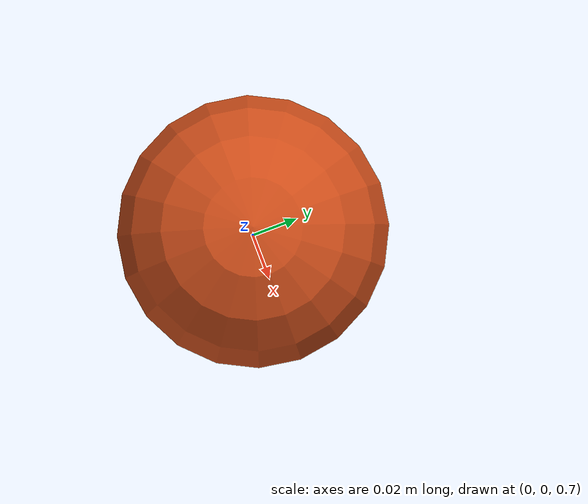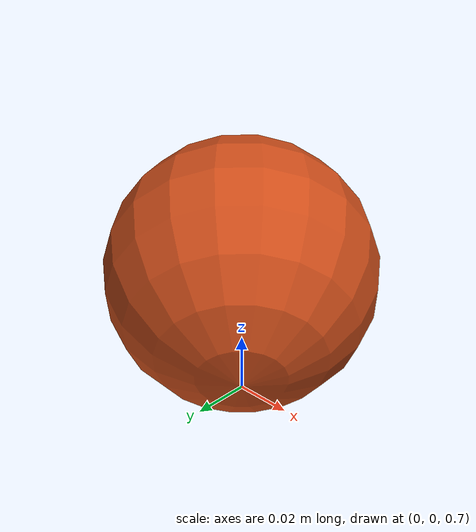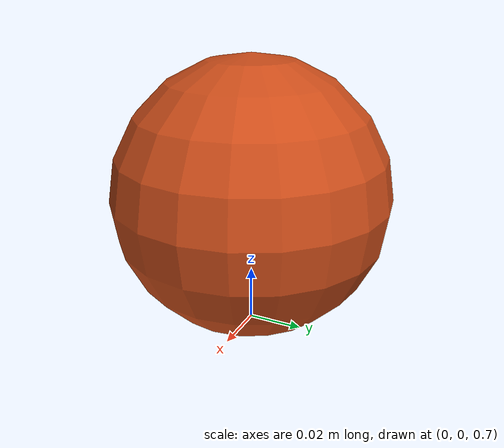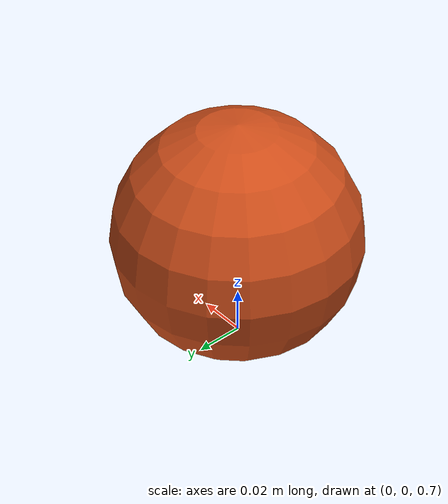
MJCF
<mujoco model="ant-hive-world-embodiment-s1">

  <option gravity="0 0 -9.81" timestep="0.002"/>

  <worldbody>
    <light name="light" pos="0 0 3" dir="0 0 -1" diffuse="1 1 1"/>
    <geom name="ground" type="plane" size="2 2 0.1" rgba="0.5 0.5 0.5 1" solref="0.005 1"/>

    <body name="ant_placeholder" pos="0 0 0.75">
      <!-- 0.75m start height, sphere radius 0.05 -> resting center height is
           exactly 0.05m -- 0.70m of clear fall distance before contact. -->
      <freejoint name="ant_placeholder_free"/>
      <geom name="ant_placeholder_geom" type="sphere" size="0.05" rgba="0.8 0.3 0.1 1" mass="0.01" solref="0.005 1"/>
    </body>
  </worldbody>
</mujoco>
